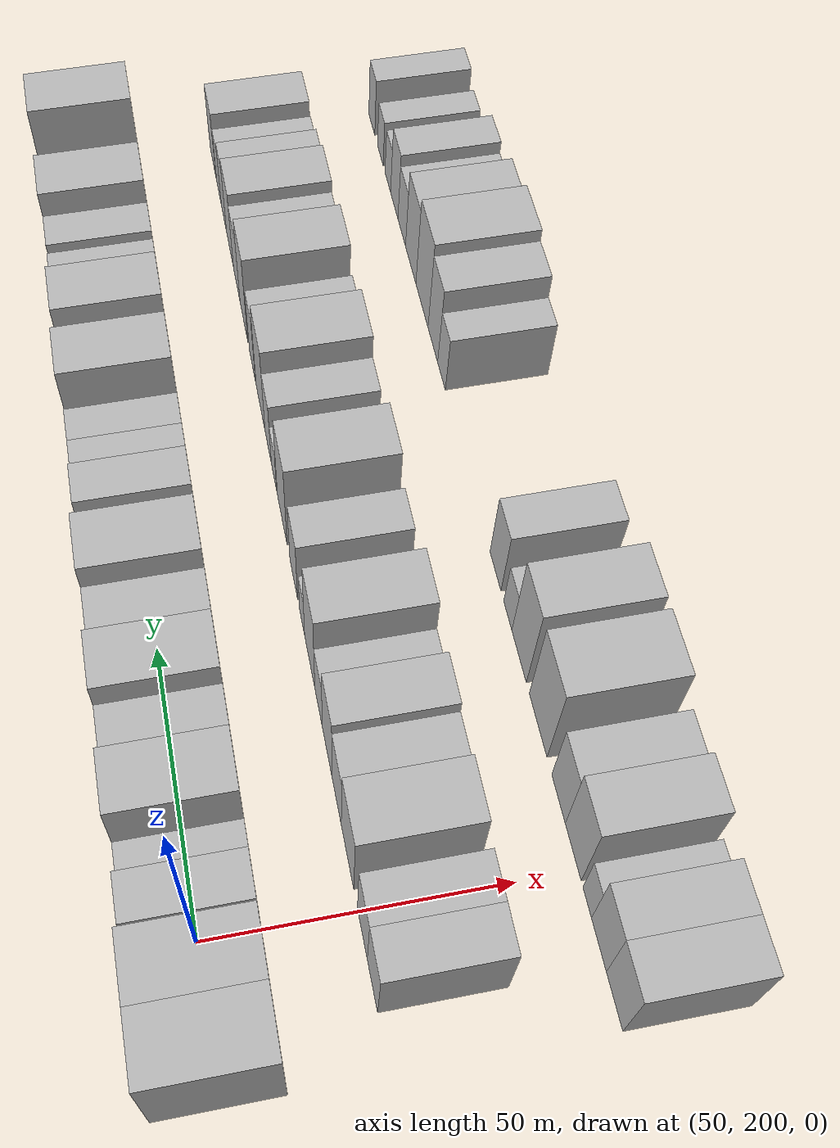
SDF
<sdf version="1.6">
 <world name="default">
  <model name="building_58">
   <static>1</static>
   <pose>50.0000 181.5471 0 0.000000 0.000000 0.000000</pose>
   <link name="link">
    <pose>0 0 12.00 0 0 0</pose>
    <collision name="collision"><geometry><box><size>20.0000 10.9324 24.0000</size></box></geometry></collision>
    <visual name="visual">
     <cast_shadows>0</cast_shadows>
     <geometry><box><size>20.0000 10.9324 24.0000</size></box></geometry>
     <material>
      <script>
       <uri>model://HANNAS_wall/materials/scripts</uri>
       <uri>model://HANNAS_wall/materials/textures</uri>
       <name>vrc/HANNAS_wall</name>
      </script>
     </material>
    </visual>
   </link>
  </model>
  <model name="building_59">
   <static>1</static>
   <pose>50.0000 192.3717 0 0.000000 0.000000 0.000000</pose>
   <link name="link">
    <pose>0 0 12.00 0 0 0</pose>
    <collision name="collision"><geometry><box><size>20.0000 10.7169 24.0000</size></box></geometry></collision>
    <visual name="visual">
     <cast_shadows>0</cast_shadows>
     <geometry><box><size>20.0000 10.7169 24.0000</size></box></geometry>
     <material>
      <script>
       <uri>model://HANNAS_wall/materials/scripts</uri>
       <uri>model://HANNAS_wall/materials/textures</uri>
       <name>vrc/HANNAS_wall</name>
      </script>
     </material>
    </visual>
   </link>
  </model>
  <model name="building_60">
   <static>1</static>
   <pose>50.0000 203.5715 0 0.000000 0.000000 0.000000</pose>
   <link name="link">
    <pose>0 0 9.00 0 0 0</pose>
    <collision name="collision"><geometry><box><size>20.0000 7.6826 18.0000</size></box></geometry></collision>
    <visual name="visual">
     <cast_shadows>0</cast_shadows>
     <geometry><box><size>20.0000 7.6826 18.0000</size></box></geometry>
     <material>
      <script>
       <uri>model://HANNAS_wall/materials/scripts</uri>
       <uri>model://HANNAS_wall/materials/textures</uri>
       <name>vrc/HANNAS_wall</name>
      </script>
     </material>
    </visual>
   </link>
  </model>
  <model name="building_61">
   <static>1</static>
   <pose>50.0000 211.0909 0 0.000000 0.000000 0.000000</pose>
   <link name="link">
    <pose>0 0 6.00 0 0 0</pose>
    <collision name="collision"><geometry><box><size>20.0000 5.3562 12.0000</size></box></geometry></collision>
    <visual name="visual">
     <cast_shadows>0</cast_shadows>
     <geometry><box><size>20.0000 5.3562 12.0000</size></box></geometry>
     <material>
      <script>
       <uri>model://HANNAS_wall/materials/scripts</uri>
       <uri>model://HANNAS_wall/materials/textures</uri>
       <name>vrc/HANNAS_wall</name>
      </script>
     </material>
    </visual>
   </link>
  </model>
  <model name="building_62">
   <static>1</static>
   <pose>50.0000 218.9230 0 0.000000 0.000000 0.000000</pose>
   <link name="link">
    <pose>0 0 12.00 0 0 0</pose>
    <collision name="collision"><geometry><box><size>20.0000 10.3079 24.0000</size></box></geometry></collision>
    <visual name="visual">
     <cast_shadows>0</cast_shadows>
     <geometry><box><size>20.0000 10.3079 24.0000</size></box></geometry>
     <material>
      <script>
       <uri>model://HANNAS_wall/materials/scripts</uri>
       <uri>model://HANNAS_wall/materials/textures</uri>
       <name>vrc/HANNAS_wall</name>
      </script>
     </material>
    </visual>
   </link>
  </model>
  <model name="building_63">
   <static>1</static>
   <pose>50.0000 229.2952 0 0.000000 0.000000 0.000000</pose>
   <link name="link">
    <pose>0 0 9.00 0 0 0</pose>
    <collision name="collision"><geometry><box><size>20.0000 8.4365 18.0000</size></box></geometry></collision>
    <visual name="visual">
     <cast_shadows>0</cast_shadows>
     <geometry><box><size>20.0000 8.4365 18.0000</size></box></geometry>
     <material>
      <script>
       <uri>model://HANNAS_wall/materials/scripts</uri>
       <uri>model://HANNAS_wall/materials/textures</uri>
       <name>vrc/HANNAS_wall</name>
      </script>
     </material>
    </visual>
   </link>
  </model>
  <model name="building_64">
   <static>1</static>
   <pose>50.0000 238.4897 0 0.000000 0.000000 0.000000</pose>
   <link name="link">
    <pose>0 0 12.00 0 0 0</pose>
    <collision name="collision"><geometry><box><size>20.0000 9.9524 24.0000</size></box></geometry></collision>
    <visual name="visual">
     <cast_shadows>0</cast_shadows>
     <geometry><box><size>20.0000 9.9524 24.0000</size></box></geometry>
     <material>
      <script>
       <uri>model://HANNAS_wall/materials/scripts</uri>
       <uri>model://HANNAS_wall/materials/textures</uri>
       <name>vrc/HANNAS_wall</name>
      </script>
     </material>
    </visual>
   </link>
  </model>
  <model name="building_65">
   <static>1</static>
   <pose>50.0000 249.8258 0 0.000000 0.000000 0.000000</pose>
   <link name="link">
    <pose>0 0 9.00 0 0 0</pose>
    <collision name="collision"><geometry><box><size>20.0000 8.7198 18.0000</size></box></geometry></collision>
    <visual name="visual">
     <cast_shadows>0</cast_shadows>
     <geometry><box><size>20.0000 8.7198 18.0000</size></box></geometry>
     <material>
      <script>
       <uri>model://HANNAS_wall/materials/scripts</uri>
       <uri>model://HANNAS_wall/materials/textures</uri>
       <name>vrc/HANNAS_wall</name>
      </script>
     </material>
    </visual>
   </link>
  </model>
  <model name="building_66">
   <static>1</static>
   <pose>50.0000 259.4110 0 0.000000 0.000000 0.000000</pose>
   <link name="link">
    <pose>0 0 12.00 0 0 0</pose>
    <collision name="collision"><geometry><box><size>20.0000 10.4507 24.0000</size></box></geometry></collision>
    <visual name="visual">
     <cast_shadows>0</cast_shadows>
     <geometry><box><size>20.0000 10.4507 24.0000</size></box></geometry>
     <material>
      <script>
       <uri>model://HANNAS_wall/materials/scripts</uri>
       <uri>model://HANNAS_wall/materials/textures</uri>
       <name>vrc/HANNAS_wall</name>
      </script>
     </material>
    </visual>
   </link>
  </model>
  <model name="building_67">
   <static>1</static>
   <pose>50.0000 267.4481 0 0.000000 0.000000 0.000000</pose>
   <link name="link">
    <pose>0 0 6.00 0 0 0</pose>
    <collision name="collision"><geometry><box><size>20.0000 5.6235 12.0000</size></box></geometry></collision>
    <visual name="visual">
     <cast_shadows>0</cast_shadows>
     <geometry><box><size>20.0000 5.6235 12.0000</size></box></geometry>
     <material>
      <script>
       <uri>model://HANNAS_wall/materials/scripts</uri>
       <uri>model://HANNAS_wall/materials/textures</uri>
       <name>vrc/HANNAS_wall</name>
      </script>
     </material>
    </visual>
   </link>
  </model>
  <model name="building_68">
   <static>1</static>
   <pose>50.0000 274.1863 0 0.000000 0.000000 0.000000</pose>
   <link name="link">
    <pose>0 0 9.00 0 0 0</pose>
    <collision name="collision"><geometry><box><size>20.0000 7.8528 18.0000</size></box></geometry></collision>
    <visual name="visual">
     <cast_shadows>0</cast_shadows>
     <geometry><box><size>20.0000 7.8528 18.0000</size></box></geometry>
     <material>
      <script>
       <uri>model://HANNAS_wall/materials/scripts</uri>
       <uri>model://HANNAS_wall/materials/textures</uri>
       <name>vrc/HANNAS_wall</name>
      </script>
     </material>
    </visual>
   </link>
  </model>
  <model name="building_69">
   <static>1</static>
   <pose>50.0000 281.5265 0 0.000000 0.000000 0.000000</pose>
   <link name="link">
    <pose>0 0 7.50 0 0 0</pose>
    <collision name="collision"><geometry><box><size>20.0000 6.8278 15.0000</size></box></geometry></collision>
    <visual name="visual">
     <cast_shadows>0</cast_shadows>
     <geometry><box><size>20.0000 6.8278 15.0000</size></box></geometry>
     <material>
      <script>
       <uri>model://HANNAS_wall/materials/scripts</uri>
       <uri>model://HANNAS_wall/materials/textures</uri>
       <name>vrc/HANNAS_wall</name>
      </script>
     </material>
    </visual>
   </link>
  </model>
  <model name="building_70">
   <static>1</static>
   <pose>50.0000 288.2438 0 0.000000 0.000000 0.000000</pose>
   <link name="link">
    <pose>0 0 7.50 0 0 0</pose>
    <collision name="collision"><geometry><box><size>20.0000 6.6067 15.0000</size></box></geometry></collision>
    <visual name="visual">
     <cast_shadows>0</cast_shadows>
     <geometry><box><size>20.0000 6.6067 15.0000</size></box></geometry>
     <material>
      <script>
       <uri>model://HANNAS_wall/materials/scripts</uri>
       <uri>model://HANNAS_wall/materials/textures</uri>
       <name>vrc/HANNAS_wall</name>
      </script>
     </material>
    </visual>
   </link>
  </model>
  <model name="building_71">
   <static>1</static>
   <pose>50.0000 297.6595 0 0.000000 0.000000 0.000000</pose>
   <link name="link">
    <pose>0 0 12.00 0 0 0</pose>
    <collision name="collision"><geometry><box><size>20.0000 10.2246 24.0000</size></box></geometry></collision>
    <visual name="visual">
     <cast_shadows>0</cast_shadows>
     <geometry><box><size>20.0000 10.2246 24.0000</size></box></geometry>
     <material>
      <script>
       <uri>model://HANNAS_wall/materials/scripts</uri>
       <uri>model://HANNAS_wall/materials/textures</uri>
       <name>vrc/HANNAS_wall</name>
      </script>
     </material>
    </visual>
   </link>
  </model>
  <model name="building_72">
   <static>1</static>
   <pose>50.0000 305.9735 0 0.000000 0.000000 0.000000</pose>
   <link name="link">
    <pose>0 0 7.50 0 0 0</pose>
    <collision name="collision"><geometry><box><size>20.0000 6.4033 15.0000</size></box></geometry></collision>
    <visual name="visual">
     <cast_shadows>0</cast_shadows>
     <geometry><box><size>20.0000 6.4033 15.0000</size></box></geometry>
     <material>
      <script>
       <uri>model://HANNAS_wall/materials/scripts</uri>
       <uri>model://HANNAS_wall/materials/textures</uri>
       <name>vrc/HANNAS_wall</name>
      </script>
     </material>
    </visual>
   </link>
  </model>
  <model name="building_73">
   <static>1</static>
   <pose>50.0000 314.2457 0 0.000000 0.000000 0.000000</pose>
   <link name="link">
    <pose>0 0 10.50 0 0 0</pose>
    <collision name="collision"><geometry><box><size>20.0000 10.1412 21.0000</size></box></geometry></collision>
    <visual name="visual">
     <cast_shadows>0</cast_shadows>
     <geometry><box><size>20.0000 10.1412 21.0000</size></box></geometry>
     <material>
      <script>
       <uri>model://HANNAS_wall/materials/scripts</uri>
       <uri>model://HANNAS_wall/materials/textures</uri>
       <name>vrc/HANNAS_wall</name>
      </script>
     </material>
    </visual>
   </link>
  </model>
  <model name="building_74">
   <static>1</static>
   <pose>50.0000 324.5699 0 0.000000 0.000000 0.000000</pose>
   <link name="link">
    <pose>0 0 7.50 0 0 0</pose>
    <collision name="collision"><geometry><box><size>20.0000 6.5073 15.0000</size></box></geometry></collision>
    <visual name="visual">
     <cast_shadows>0</cast_shadows>
     <geometry><box><size>20.0000 6.5073 15.0000</size></box></geometry>
     <material>
      <script>
       <uri>model://HANNAS_wall/materials/scripts</uri>
       <uri>model://HANNAS_wall/materials/textures</uri>
       <name>vrc/HANNAS_wall</name>
      </script>
     </material>
    </visual>
   </link>
  </model>
  <model name="building_75">
   <static>1</static>
   <pose>50.0000 333.5263 0 0.000000 0.000000 0.000000</pose>
   <link name="link">
    <pose>0 0 7.50 0 0 0</pose>
    <collision name="collision"><geometry><box><size>20.0000 7.4054 15.0000</size></box></geometry></collision>
    <visual name="visual">
     <cast_shadows>0</cast_shadows>
     <geometry><box><size>20.0000 7.4054 15.0000</size></box></geometry>
     <material>
      <script>
       <uri>model://HANNAS_wall/materials/scripts</uri>
       <uri>model://HANNAS_wall/materials/textures</uri>
       <name>vrc/HANNAS_wall</name>
      </script>
     </material>
    </visual>
   </link>
  </model>
  <model name="building_76">
   <static>1</static>
   <pose>50.0000 342.3427 0 0.000000 0.000000 0.000000</pose>
   <link name="link">
    <pose>0 0 10.50 0 0 0</pose>
    <collision name="collision"><geometry><box><size>20.0000 10.2273 21.0000</size></box></geometry></collision>
    <visual name="visual">
     <cast_shadows>0</cast_shadows>
     <geometry><box><size>20.0000 10.2273 21.0000</size></box></geometry>
     <material>
      <script>
       <uri>model://HANNAS_wall/materials/scripts</uri>
       <uri>model://HANNAS_wall/materials/textures</uri>
       <name>vrc/HANNAS_wall</name>
      </script>
     </material>
    </visual>
   </link>
  </model>
  <model name="building_77">
   <static>1</static>
   <pose>50.0000 353.3119 0 0.000000 0.000000 0.000000</pose>
   <link name="link">
    <pose>0 0 6.00 0 0 0</pose>
    <collision name="collision"><geometry><box><size>20.0000 5.7110 12.0000</size></box></geometry></collision>
    <visual name="visual">
     <cast_shadows>0</cast_shadows>
     <geometry><box><size>20.0000 5.7110 12.0000</size></box></geometry>
     <material>
      <script>
       <uri>model://HANNAS_wall/materials/scripts</uri>
       <uri>model://HANNAS_wall/materials/textures</uri>
       <name>vrc/HANNAS_wall</name>
      </script>
     </material>
    </visual>
   </link>
  </model>
  <model name="building_78">
   <static>1</static>
   <pose>50.0000 361.4335 0 0.000000 0.000000 0.000000</pose>
   <link name="link">
    <pose>0 0 12.00 0 0 0</pose>
    <collision name="collision"><geometry><box><size>20.0000 10.5321 24.0000</size></box></geometry></collision>
    <visual name="visual">
     <cast_shadows>0</cast_shadows>
     <geometry><box><size>20.0000 10.5321 24.0000</size></box></geometry>
     <material>
      <script>
       <uri>model://HANNAS_wall/materials/scripts</uri>
       <uri>model://HANNAS_wall/materials/textures</uri>
       <name>vrc/HANNAS_wall</name>
      </script>
     </material>
    </visual>
   </link>
  </model>
  <model name="building_140">
   <static>1</static>
   <pose>85.0000 188.8514 0 0.000000 0.000000 0.000000</pose>
   <link name="link">
    <pose>0 0 9.00 0 0 0</pose>
    <collision name="collision"><geometry><box><size>20.0000 7.8658 18.0000</size></box></geometry></collision>
    <visual name="visual">
     <cast_shadows>0</cast_shadows>
     <geometry><box><size>20.0000 7.8658 18.0000</size></box></geometry>
     <material>
      <script>
       <uri>model://HANNAS_wall/materials/scripts</uri>
       <uri>model://HANNAS_wall/materials/textures</uri>
       <name>vrc/HANNAS_wall</name>
      </script>
     </material>
    </visual>
   </link>
  </model>
  <model name="building_141">
   <static>1</static>
   <pose>85.0000 196.6980 0 0.000000 0.000000 0.000000</pose>
   <link name="link">
    <pose>0 0 9.00 0 0 0</pose>
    <collision name="collision"><geometry><box><size>20.0000 7.8273 18.0000</size></box></geometry></collision>
    <visual name="visual">
     <cast_shadows>0</cast_shadows>
     <geometry><box><size>20.0000 7.8273 18.0000</size></box></geometry>
     <material>
      <script>
       <uri>model://HANNAS_wall/materials/scripts</uri>
       <uri>model://HANNAS_wall/materials/textures</uri>
       <name>vrc/HANNAS_wall</name>
      </script>
     </material>
    </visual>
   </link>
  </model>
  <model name="building_142">
   <static>1</static>
   <pose>85.0000 208.8113 0 0.000000 0.000000 0.000000</pose>
   <link name="link">
    <pose>0 0 10.50 0 0 0</pose>
    <collision name="collision"><geometry><box><size>20.0000 10.3994 21.0000</size></box></geometry></collision>
    <visual name="visual">
     <cast_shadows>0</cast_shadows>
     <geometry><box><size>20.0000 10.3994 21.0000</size></box></geometry>
     <material>
      <script>
       <uri>model://HANNAS_wall/materials/scripts</uri>
       <uri>model://HANNAS_wall/materials/textures</uri>
       <name>vrc/HANNAS_wall</name>
      </script>
     </material>
    </visual>
   </link>
  </model>
  <model name="building_143">
   <static>1</static>
   <pose>85.0000 218.1166 0 0.000000 0.000000 0.000000</pose>
   <link name="link">
    <pose>0 0 9.00 0 0 0</pose>
    <collision name="collision"><geometry><box><size>20.0000 8.2112 18.0000</size></box></geometry></collision>
    <visual name="visual">
     <cast_shadows>0</cast_shadows>
     <geometry><box><size>20.0000 8.2112 18.0000</size></box></geometry>
     <material>
      <script>
       <uri>model://HANNAS_wall/materials/scripts</uri>
       <uri>model://HANNAS_wall/materials/textures</uri>
       <name>vrc/HANNAS_wall</name>
      </script>
     </material>
    </visual>
   </link>
  </model>
  <model name="building_144">
   <static>1</static>
   <pose>85.0000 226.5747 0 0.000000 0.000000 0.000000</pose>
   <link name="link">
    <pose>0 0 10.50 0 0 0</pose>
    <collision name="collision"><geometry><box><size>20.0000 8.7051 21.0000</size></box></geometry></collision>
    <visual name="visual">
     <cast_shadows>0</cast_shadows>
     <geometry><box><size>20.0000 8.7051 21.0000</size></box></geometry>
     <material>
      <script>
       <uri>model://HANNAS_wall/materials/scripts</uri>
       <uri>model://HANNAS_wall/materials/textures</uri>
       <name>vrc/HANNAS_wall</name>
      </script>
     </material>
    </visual>
   </link>
  </model>
  <model name="building_145">
   <static>1</static>
   <pose>85.0000 234.4475 0 0.000000 0.000000 0.000000</pose>
   <link name="link">
    <pose>0 0 7.50 0 0 0</pose>
    <collision name="collision"><geometry><box><size>20.0000 7.0405 15.0000</size></box></geometry></collision>
    <visual name="visual">
     <cast_shadows>0</cast_shadows>
     <geometry><box><size>20.0000 7.0405 15.0000</size></box></geometry>
     <material>
      <script>
       <uri>model://HANNAS_wall/materials/scripts</uri>
       <uri>model://HANNAS_wall/materials/textures</uri>
       <name>vrc/HANNAS_wall</name>
      </script>
     </material>
    </visual>
   </link>
  </model>
  <model name="building_146">
   <static>1</static>
   <pose>85.0000 242.9093 0 0.000000 0.000000 0.000000</pose>
   <link name="link">
    <pose>0 0 12.00 0 0 0</pose>
    <collision name="collision"><geometry><box><size>20.0000 9.8830 24.0000</size></box></geometry></collision>
    <visual name="visual">
     <cast_shadows>0</cast_shadows>
     <geometry><box><size>20.0000 9.8830 24.0000</size></box></geometry>
     <material>
      <script>
       <uri>model://HANNAS_wall/materials/scripts</uri>
       <uri>model://HANNAS_wall/materials/textures</uri>
       <name>vrc/HANNAS_wall</name>
      </script>
     </material>
    </visual>
   </link>
  </model>
  <model name="building_147">
   <static>1</static>
   <pose>85.0000 250.3778 0 0.000000 0.000000 0.000000</pose>
   <link name="link">
    <pose>0 0 6.00 0 0 0</pose>
    <collision name="collision"><geometry><box><size>20.0000 5.0541 12.0000</size></box></geometry></collision>
    <visual name="visual">
     <cast_shadows>0</cast_shadows>
     <geometry><box><size>20.0000 5.0541 12.0000</size></box></geometry>
     <material>
      <script>
       <uri>model://HANNAS_wall/materials/scripts</uri>
       <uri>model://HANNAS_wall/materials/textures</uri>
       <name>vrc/HANNAS_wall</name>
      </script>
     </material>
    </visual>
   </link>
  </model>
  <model name="building_148">
   <static>1</static>
   <pose>85.0000 258.9139 0 0.000000 0.000000 0.000000</pose>
   <link name="link">
    <pose>0 0 9.00 0 0 0</pose>
    <collision name="collision"><geometry><box><size>20.0000 8.0181 18.0000</size></box></geometry></collision>
    <visual name="visual">
     <cast_shadows>0</cast_shadows>
     <geometry><box><size>20.0000 8.0181 18.0000</size></box></geometry>
     <material>
      <script>
       <uri>model://HANNAS_wall/materials/scripts</uri>
       <uri>model://HANNAS_wall/materials/textures</uri>
       <name>vrc/HANNAS_wall</name>
      </script>
     </material>
    </visual>
   </link>
  </model>
  <model name="building_149">
   <static>1</static>
   <pose>85.0000 271.1254 0 0.000000 0.000000 0.000000</pose>
   <link name="link">
    <pose>0 0 12.00 0 0 0</pose>
    <collision name="collision"><geometry><box><size>20.0000 10.4050 24.0000</size></box></geometry></collision>
    <visual name="visual">
     <cast_shadows>0</cast_shadows>
     <geometry><box><size>20.0000 10.4050 24.0000</size></box></geometry>
     <material>
      <script>
       <uri>model://HANNAS_wall/materials/scripts</uri>
       <uri>model://HANNAS_wall/materials/textures</uri>
       <name>vrc/HANNAS_wall</name>
      </script>
     </material>
    </visual>
   </link>
  </model>
  <model name="building_150">
   <static>1</static>
   <pose>85.0000 280.2539 0 0.000000 0.000000 0.000000</pose>
   <link name="link">
    <pose>0 0 6.00 0 0 0</pose>
    <collision name="collision"><geometry><box><size>20.0000 5.8520 12.0000</size></box></geometry></collision>
    <visual name="visual">
     <cast_shadows>0</cast_shadows>
     <geometry><box><size>20.0000 5.8520 12.0000</size></box></geometry>
     <material>
      <script>
       <uri>model://HANNAS_wall/materials/scripts</uri>
       <uri>model://HANNAS_wall/materials/textures</uri>
       <name>vrc/HANNAS_wall</name>
      </script>
     </material>
    </visual>
   </link>
  </model>
  <model name="building_151">
   <static>1</static>
   <pose>85.0000 286.8686 0 0.000000 0.000000 0.000000</pose>
   <link name="link">
    <pose>0 0 9.00 0 0 0</pose>
    <collision name="collision"><geometry><box><size>20.0000 7.3773 18.0000</size></box></geometry></collision>
    <visual name="visual">
     <cast_shadows>0</cast_shadows>
     <geometry><box><size>20.0000 7.3773 18.0000</size></box></geometry>
     <material>
      <script>
       <uri>model://HANNAS_wall/materials/scripts</uri>
       <uri>model://HANNAS_wall/materials/textures</uri>
       <name>vrc/HANNAS_wall</name>
      </script>
     </material>
    </visual>
   </link>
  </model>
  <model name="building_152">
   <static>1</static>
   <pose>85.0000 295.8866 0 0.000000 0.000000 0.000000</pose>
   <link name="link">
    <pose>0 0 12.00 0 0 0</pose>
    <collision name="collision"><geometry><box><size>20.0000 10.6586 24.0000</size></box></geometry></collision>
    <visual name="visual">
     <cast_shadows>0</cast_shadows>
     <geometry><box><size>20.0000 10.6586 24.0000</size></box></geometry>
     <material>
      <script>
       <uri>model://HANNAS_wall/materials/scripts</uri>
       <uri>model://HANNAS_wall/materials/textures</uri>
       <name>vrc/HANNAS_wall</name>
      </script>
     </material>
    </visual>
   </link>
  </model>
  <model name="building_153">
   <static>1</static>
   <pose>85.0000 305.9113 0 0.000000 0.000000 0.000000</pose>
   <link name="link">
    <pose>0 0 9.00 0 0 0</pose>
    <collision name="collision"><geometry><box><size>20.0000 7.3907 18.0000</size></box></geometry></collision>
    <visual name="visual">
     <cast_shadows>0</cast_shadows>
     <geometry><box><size>20.0000 7.3907 18.0000</size></box></geometry>
     <material>
      <script>
       <uri>model://HANNAS_wall/materials/scripts</uri>
       <uri>model://HANNAS_wall/materials/textures</uri>
       <name>vrc/HANNAS_wall</name>
      </script>
     </material>
    </visual>
   </link>
  </model>
  <model name="building_154">
   <static>1</static>
   <pose>85.0000 316.6309 0 0.000000 0.000000 0.000000</pose>
   <link name="link">
    <pose>0 0 12.00 0 0 0</pose>
    <collision name="collision"><geometry><box><size>20.0000 10.0485 24.0000</size></box></geometry></collision>
    <visual name="visual">
     <cast_shadows>0</cast_shadows>
     <geometry><box><size>20.0000 10.0485 24.0000</size></box></geometry>
     <material>
      <script>
       <uri>model://HANNAS_wall/materials/scripts</uri>
       <uri>model://HANNAS_wall/materials/textures</uri>
       <name>vrc/HANNAS_wall</name>
      </script>
     </material>
    </visual>
   </link>
  </model>
  <model name="building_155">
   <static>1</static>
   <pose>85.0000 326.0820 0 0.000000 0.000000 0.000000</pose>
   <link name="link">
    <pose>0 0 9.00 0 0 0</pose>
    <collision name="collision"><geometry><box><size>20.0000 8.8538 18.0000</size></box></geometry></collision>
    <visual name="visual">
     <cast_shadows>0</cast_shadows>
     <geometry><box><size>20.0000 8.8538 18.0000</size></box></geometry>
     <material>
      <script>
       <uri>model://HANNAS_wall/materials/scripts</uri>
       <uri>model://HANNAS_wall/materials/textures</uri>
       <name>vrc/HANNAS_wall</name>
      </script>
     </material>
    </visual>
   </link>
  </model>
  <model name="building_156">
   <static>1</static>
   <pose>85.0000 335.2859 0 0.000000 0.000000 0.000000</pose>
   <link name="link">
    <pose>0 0 10.50 0 0 0</pose>
    <collision name="collision"><geometry><box><size>20.0000 9.5541 21.0000</size></box></geometry></collision>
    <visual name="visual">
     <cast_shadows>0</cast_shadows>
     <geometry><box><size>20.0000 9.5541 21.0000</size></box></geometry>
     <material>
      <script>
       <uri>model://HANNAS_wall/materials/scripts</uri>
       <uri>model://HANNAS_wall/materials/textures</uri>
       <name>vrc/HANNAS_wall</name>
      </script>
     </material>
    </visual>
   </link>
  </model>
  <model name="building_157">
   <static>1</static>
   <pose>85.0000 343.7453 0 0.000000 0.000000 0.000000</pose>
   <link name="link">
    <pose>0 0 9.00 0 0 0</pose>
    <collision name="collision"><geometry><box><size>20.0000 7.3647 18.0000</size></box></geometry></collision>
    <visual name="visual">
     <cast_shadows>0</cast_shadows>
     <geometry><box><size>20.0000 7.3647 18.0000</size></box></geometry>
     <material>
      <script>
       <uri>model://HANNAS_wall/materials/scripts</uri>
       <uri>model://HANNAS_wall/materials/textures</uri>
       <name>vrc/HANNAS_wall</name>
      </script>
     </material>
    </visual>
   </link>
  </model>
  <model name="building_158">
   <static>1</static>
   <pose>85.0000 350.8072 0 0.000000 0.000000 0.000000</pose>
   <link name="link">
    <pose>0 0 7.50 0 0 0</pose>
    <collision name="collision"><geometry><box><size>20.0000 6.7591 15.0000</size></box></geometry></collision>
    <visual name="visual">
     <cast_shadows>0</cast_shadows>
     <geometry><box><size>20.0000 6.7591 15.0000</size></box></geometry>
     <material>
      <script>
       <uri>model://HANNAS_wall/materials/scripts</uri>
       <uri>model://HANNAS_wall/materials/textures</uri>
       <name>vrc/HANNAS_wall</name>
      </script>
     </material>
    </visual>
   </link>
  </model>
  <model name="building_159">
   <static>1</static>
   <pose>85.0000 359.5861 0 0.000000 0.000000 0.000000</pose>
   <link name="link">
    <pose>0 0 9.00 0 0 0</pose>
    <collision name="collision"><geometry><box><size>20.0000 8.7989 18.0000</size></box></geometry></collision>
    <visual name="visual">
     <cast_shadows>0</cast_shadows>
     <geometry><box><size>20.0000 8.7989 18.0000</size></box></geometry>
     <material>
      <script>
       <uri>model://HANNAS_wall/materials/scripts</uri>
       <uri>model://HANNAS_wall/materials/textures</uri>
       <name>vrc/HANNAS_wall</name>
      </script>
     </material>
    </visual>
   </link>
  </model>
  <model name="building_218">
   <static>1</static>
   <pose>120.0000 180.0381 0 0.000000 0.000000 0.000000</pose>
   <link name="link">
    <pose>0 0 9.00 0 0 0</pose>
    <collision name="collision"><geometry><box><size>20.0000 8.6977 18.0000</size></box></geometry></collision>
    <visual name="visual">
     <cast_shadows>0</cast_shadows>
     <geometry><box><size>20.0000 8.6977 18.0000</size></box></geometry>
     <material>
      <script>
       <uri>model://HANNAS_wall/materials/scripts</uri>
       <uri>model://HANNAS_wall/materials/textures</uri>
       <name>vrc/HANNAS_wall</name>
      </script>
     </material>
    </visual>
   </link>
  </model>
  <model name="building_219">
   <static>1</static>
   <pose>120.0000 188.4820 0 0.000000 0.000000 0.000000</pose>
   <link name="link">
    <pose>0 0 9.00 0 0 0</pose>
    <collision name="collision"><geometry><box><size>20.0000 8.1901 18.0000</size></box></geometry></collision>
    <visual name="visual">
     <cast_shadows>0</cast_shadows>
     <geometry><box><size>20.0000 8.1901 18.0000</size></box></geometry>
     <material>
      <script>
       <uri>model://HANNAS_wall/materials/scripts</uri>
       <uri>model://HANNAS_wall/materials/textures</uri>
       <name>vrc/HANNAS_wall</name>
      </script>
     </material>
    </visual>
   </link>
  </model>
  <model name="building_220">
   <static>1</static>
   <pose>120.0000 195.0101 0 0.000000 0.000000 0.000000</pose>
   <link name="link">
    <pose>0 0 6.00 0 0 0</pose>
    <collision name="collision"><geometry><box><size>20.0000 4.8660 12.0000</size></box></geometry></collision>
    <visual name="visual">
     <cast_shadows>0</cast_shadows>
     <geometry><box><size>20.0000 4.8660 12.0000</size></box></geometry>
     <material>
      <script>
       <uri>model://HANNAS_wall/materials/scripts</uri>
       <uri>model://HANNAS_wall/materials/textures</uri>
       <name>vrc/HANNAS_wall</name>
      </script>
     </material>
    </visual>
   </link>
  </model>
  <model name="building_221">
   <static>1</static>
   <pose>120.0000 203.1090 0 0.000000 0.000000 0.000000</pose>
   <link name="link">
    <pose>0 0 10.50 0 0 0</pose>
    <collision name="collision"><geometry><box><size>20.0000 9.3318 21.0000</size></box></geometry></collision>
    <visual name="visual">
     <cast_shadows>0</cast_shadows>
     <geometry><box><size>20.0000 9.3318 21.0000</size></box></geometry>
     <material>
      <script>
       <uri>model://HANNAS_wall/materials/scripts</uri>
       <uri>model://HANNAS_wall/materials/textures</uri>
       <name>vrc/HANNAS_wall</name>
      </script>
     </material>
    </visual>
   </link>
  </model>
  <model name="building_222">
   <static>1</static>
   <pose>120.0000 211.9015 0 0.000000 0.000000 0.000000</pose>
   <link name="link">
    <pose>0 0 9.00 0 0 0</pose>
    <collision name="collision"><geometry><box><size>20.0000 8.2532 18.0000</size></box></geometry></collision>
    <visual name="visual">
     <cast_shadows>0</cast_shadows>
     <geometry><box><size>20.0000 8.2532 18.0000</size></box></geometry>
     <material>
      <script>
       <uri>model://HANNAS_wall/materials/scripts</uri>
       <uri>model://HANNAS_wall/materials/textures</uri>
       <name>vrc/HANNAS_wall</name>
      </script>
     </material>
    </visual>
   </link>
  </model>
  <model name="building_223">
   <static>1</static>
   <pose>120.0000 224.7451 0 0.000000 0.000000 0.000000</pose>
   <link name="link">
    <pose>0 0 12.00 0 0 0</pose>
    <collision name="collision"><geometry><box><size>20.0000 11.4339 24.0000</size></box></geometry></collision>
    <visual name="visual">
     <cast_shadows>0</cast_shadows>
     <geometry><box><size>20.0000 11.4339 24.0000</size></box></geometry>
     <material>
      <script>
       <uri>model://HANNAS_wall/materials/scripts</uri>
       <uri>model://HANNAS_wall/materials/textures</uri>
       <name>vrc/HANNAS_wall</name>
      </script>
     </material>
    </visual>
   </link>
  </model>
  <model name="building_224">
   <static>1</static>
   <pose>120.0000 237.3980 0 0.000000 0.000000 0.000000</pose>
   <link name="link">
    <pose>0 0 12.00 0 0 0</pose>
    <collision name="collision"><geometry><box><size>20.0000 9.8719 24.0000</size></box></geometry></collision>
    <visual name="visual">
     <cast_shadows>0</cast_shadows>
     <geometry><box><size>20.0000 9.8719 24.0000</size></box></geometry>
     <material>
      <script>
       <uri>model://HANNAS_wall/materials/scripts</uri>
       <uri>model://HANNAS_wall/materials/textures</uri>
       <name>vrc/HANNAS_wall</name>
      </script>
     </material>
    </visual>
   </link>
  </model>
  <model name="building_225">
   <static>1</static>
   <pose>120.0000 245.1958 0 0.000000 0.000000 0.000000</pose>
   <link name="link">
    <pose>0 0 6.00 0 0 0</pose>
    <collision name="collision"><geometry><box><size>20.0000 5.7238 12.0000</size></box></geometry></collision>
    <visual name="visual">
     <cast_shadows>0</cast_shadows>
     <geometry><box><size>20.0000 5.7238 12.0000</size></box></geometry>
     <material>
      <script>
       <uri>model://HANNAS_wall/materials/scripts</uri>
       <uri>model://HANNAS_wall/materials/textures</uri>
       <name>vrc/HANNAS_wall</name>
      </script>
     </material>
    </visual>
   </link>
  </model>
  <model name="building_226">
   <static>1</static>
   <pose>120.0000 254.0296 0 0.000000 0.000000 0.000000</pose>
   <link name="link">
    <pose>0 0 9.00 0 0 0</pose>
    <collision name="collision"><geometry><box><size>20.0000 7.9437 18.0000</size></box></geometry></collision>
    <visual name="visual">
     <cast_shadows>0</cast_shadows>
     <geometry><box><size>20.0000 7.9437 18.0000</size></box></geometry>
     <material>
      <script>
       <uri>model://HANNAS_wall/materials/scripts</uri>
       <uri>model://HANNAS_wall/materials/textures</uri>
       <name>vrc/HANNAS_wall</name>
      </script>
     </material>
    </visual>
   </link>
  </model>
  <model name="building_227">
   <static>1</static>
   <pose>120.0000 296.9341 0 0.000000 0.000000 0.000000</pose>
   <link name="link">
    <pose>0 0 7.50 0 0 0</pose>
    <collision name="collision"><geometry><box><size>20.0000 6.6218 15.0000</size></box></geometry></collision>
    <visual name="visual">
     <cast_shadows>0</cast_shadows>
     <geometry><box><size>20.0000 6.6218 15.0000</size></box></geometry>
     <material>
      <script>
       <uri>model://HANNAS_wall/materials/scripts</uri>
       <uri>model://HANNAS_wall/materials/textures</uri>
       <name>vrc/HANNAS_wall</name>
      </script>
     </material>
    </visual>
   </link>
  </model>
  <model name="building_228">
   <static>1</static>
   <pose>120.0000 304.5204 0 0.000000 0.000000 0.000000</pose>
   <link name="link">
    <pose>0 0 10.50 0 0 0</pose>
    <collision name="collision"><geometry><box><size>20.0000 8.5508 21.0000</size></box></geometry></collision>
    <visual name="visual">
     <cast_shadows>0</cast_shadows>
     <geometry><box><size>20.0000 8.5508 21.0000</size></box></geometry>
     <material>
      <script>
       <uri>model://HANNAS_wall/materials/scripts</uri>
       <uri>model://HANNAS_wall/materials/textures</uri>
       <name>vrc/HANNAS_wall</name>
      </script>
     </material>
    </visual>
   </link>
  </model>
  <model name="building_229">
   <static>1</static>
   <pose>120.0000 314.3880 0 0.000000 0.000000 0.000000</pose>
   <link name="link">
    <pose>0 0 12.00 0 0 0</pose>
    <collision name="collision"><geometry><box><size>20.0000 11.1844 24.0000</size></box></geometry></collision>
    <visual name="visual">
     <cast_shadows>0</cast_shadows>
     <geometry><box><size>20.0000 11.1844 24.0000</size></box></geometry>
     <material>
      <script>
       <uri>model://HANNAS_wall/materials/scripts</uri>
       <uri>model://HANNAS_wall/materials/textures</uri>
       <name>vrc/HANNAS_wall</name>
      </script>
     </material>
    </visual>
   </link>
  </model>
  <model name="building_230">
   <static>1</static>
   <pose>120.0000 324.9286 0 0.000000 0.000000 0.000000</pose>
   <link name="link">
    <pose>0 0 10.50 0 0 0</pose>
    <collision name="collision"><geometry><box><size>20.0000 9.8969 21.0000</size></box></geometry></collision>
    <visual name="visual">
     <cast_shadows>0</cast_shadows>
     <geometry><box><size>20.0000 9.8969 21.0000</size></box></geometry>
     <material>
      <script>
       <uri>model://HANNAS_wall/materials/scripts</uri>
       <uri>model://HANNAS_wall/materials/textures</uri>
       <name>vrc/HANNAS_wall</name>
      </script>
     </material>
    </visual>
   </link>
  </model>
  <model name="building_231">
   <static>1</static>
   <pose>120.0000 333.6032 0 0.000000 0.000000 0.000000</pose>
   <link name="link">
    <pose>0 0 7.50 0 0 0</pose>
    <collision name="collision"><geometry><box><size>20.0000 7.4523 15.0000</size></box></geometry></collision>
    <visual name="visual">
     <cast_shadows>0</cast_shadows>
     <geometry><box><size>20.0000 7.4523 15.0000</size></box></geometry>
     <material>
      <script>
       <uri>model://HANNAS_wall/materials/scripts</uri>
       <uri>model://HANNAS_wall/materials/textures</uri>
       <name>vrc/HANNAS_wall</name>
      </script>
     </material>
    </visual>
   </link>
  </model>
  <model name="building_232">
   <static>1</static>
   <pose>120.0000 341.0500 0 0.000000 0.000000 0.000000</pose>
   <link name="link">
    <pose>0 0 9.00 0 0 0</pose>
    <collision name="collision"><geometry><box><size>20.0000 7.4412 18.0000</size></box></geometry></collision>
    <visual name="visual">
     <cast_shadows>0</cast_shadows>
     <geometry><box><size>20.0000 7.4412 18.0000</size></box></geometry>
     <material>
      <script>
       <uri>model://HANNAS_wall/materials/scripts</uri>
       <uri>model://HANNAS_wall/materials/textures</uri>
       <name>vrc/HANNAS_wall</name>
      </script>
     </material>
    </visual>
   </link>
  </model>
  <model name="building_233">
   <static>1</static>
   <pose>120.0000 347.6361 0 0.000000 0.000000 0.000000</pose>
   <link name="link">
    <pose>0 0 6.00 0 0 0</pose>
    <collision name="collision"><geometry><box><size>20.0000 5.7310 12.0000</size></box></geometry></collision>
    <visual name="visual">
     <cast_shadows>0</cast_shadows>
     <geometry><box><size>20.0000 5.7310 12.0000</size></box></geometry>
     <material>
      <script>
       <uri>model://HANNAS_wall/materials/scripts</uri>
       <uri>model://HANNAS_wall/materials/textures</uri>
       <name>vrc/HANNAS_wall</name>
      </script>
     </material>
    </visual>
   </link>
  </model>
  <model name="building_234">
   <static>1</static>
   <pose>120.0000 355.4822 0 0.000000 0.000000 0.000000</pose>
   <link name="link">
    <pose>0 0 6.00 0 0 0</pose>
    <collision name="collision"><geometry><box><size>20.0000 5.9612 12.0000</size></box></geometry></collision>
    <visual name="visual">
     <cast_shadows>0</cast_shadows>
     <geometry><box><size>20.0000 5.9612 12.0000</size></box></geometry>
     <material>
      <script>
       <uri>model://HANNAS_wall/materials/scripts</uri>
       <uri>model://HANNAS_wall/materials/textures</uri>
       <name>vrc/HANNAS_wall</name>
      </script>
     </material>
    </visual>
   </link>
  </model>
  <model name="building_235">
   <static>1</static>
   <pose>120.0000 364.6804 0 0.000000 0.000000 0.000000</pose>
   <link name="link">
    <pose>0 0 7.50 0 0 0</pose>
    <collision name="collision"><geometry><box><size>20.0000 6.4351 15.0000</size></box></geometry></collision>
    <visual name="visual">
     <cast_shadows>0</cast_shadows>
     <geometry><box><size>20.0000 6.4351 15.0000</size></box></geometry>
     <material>
      <script>
       <uri>model://HANNAS_wall/materials/scripts</uri>
       <uri>model://HANNAS_wall/materials/textures</uri>
       <name>vrc/HANNAS_wall</name>
      </script>
     </material>
    </visual>
   </link>
  </model>
 </world>
</sdf>
